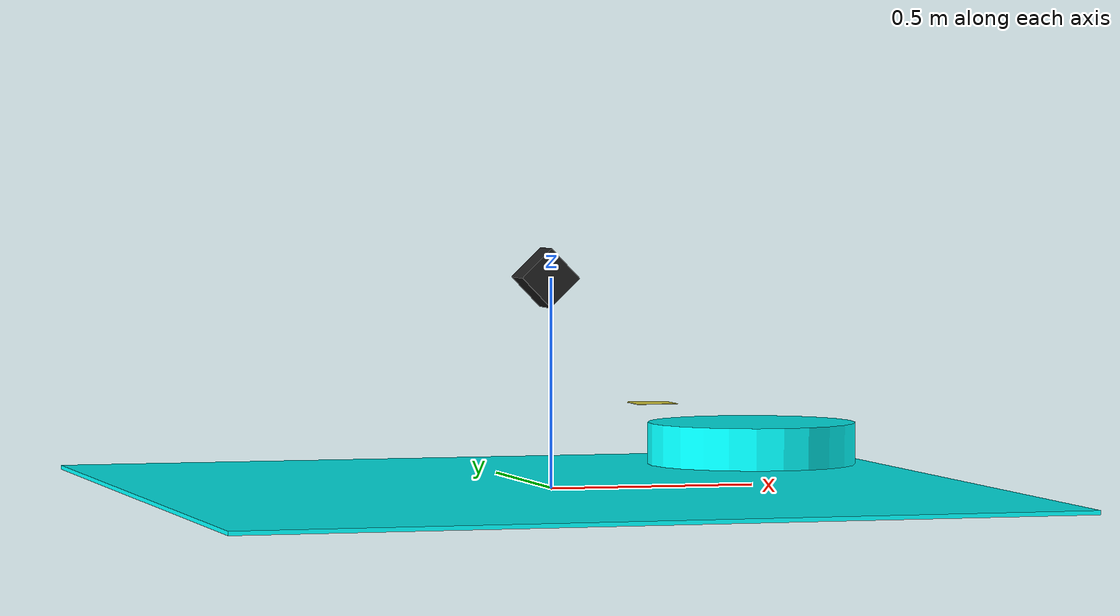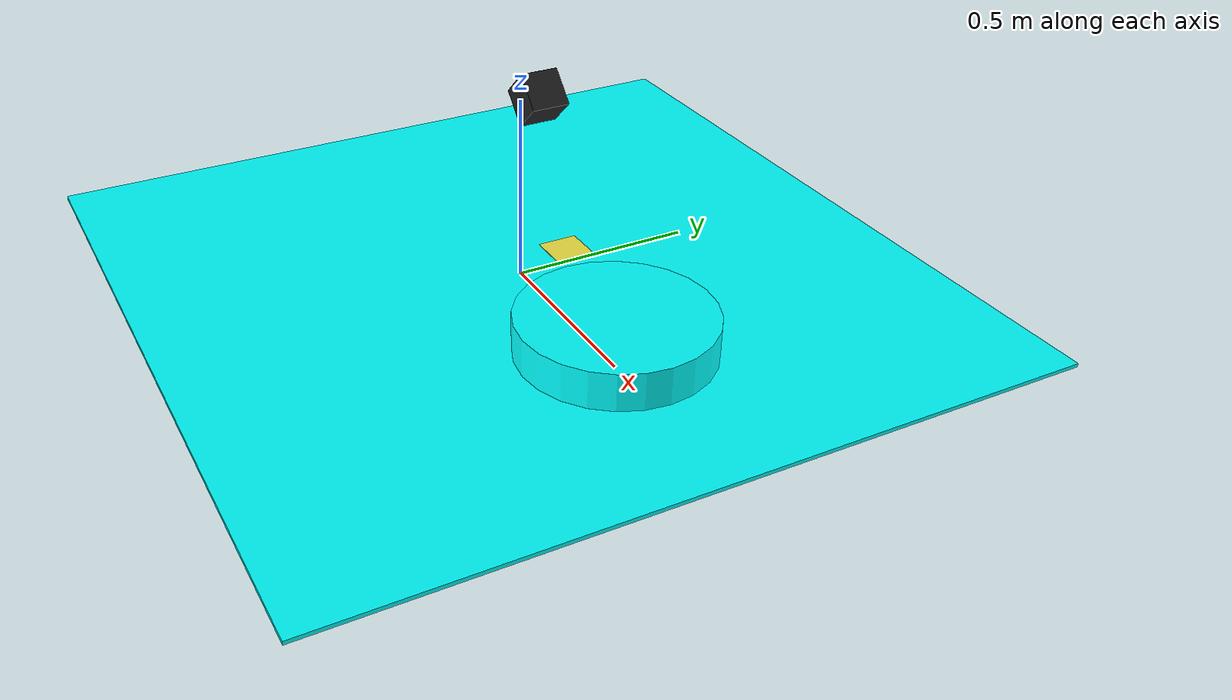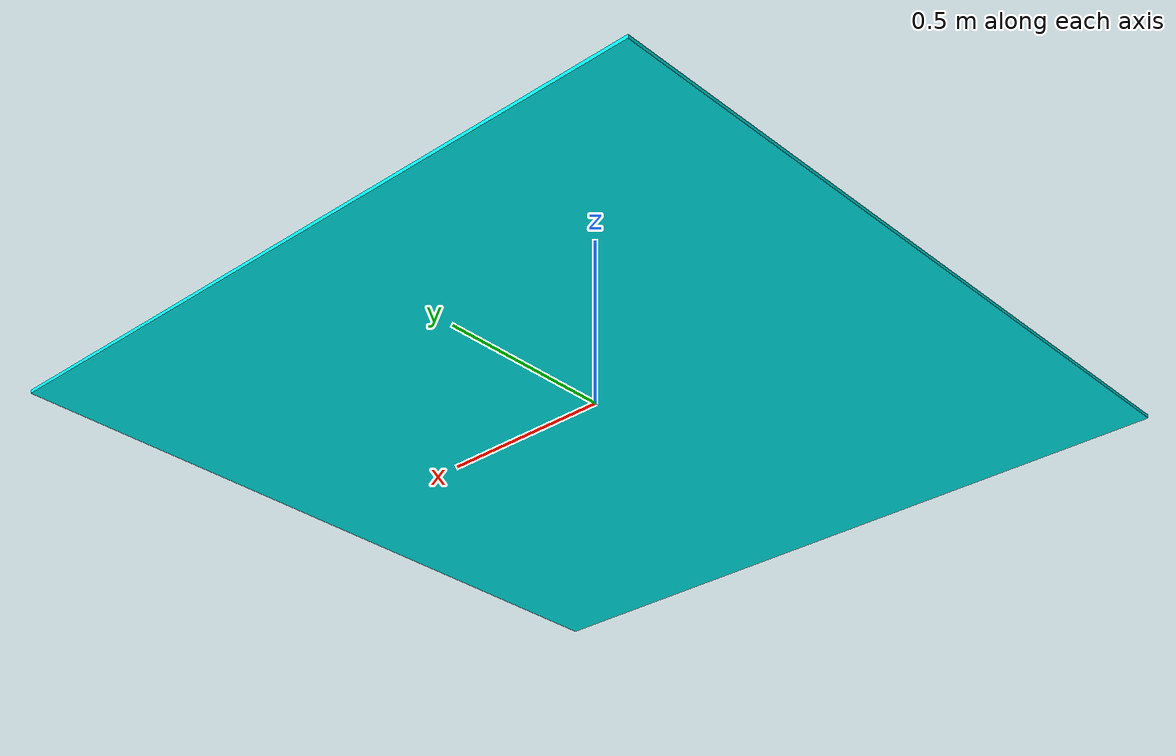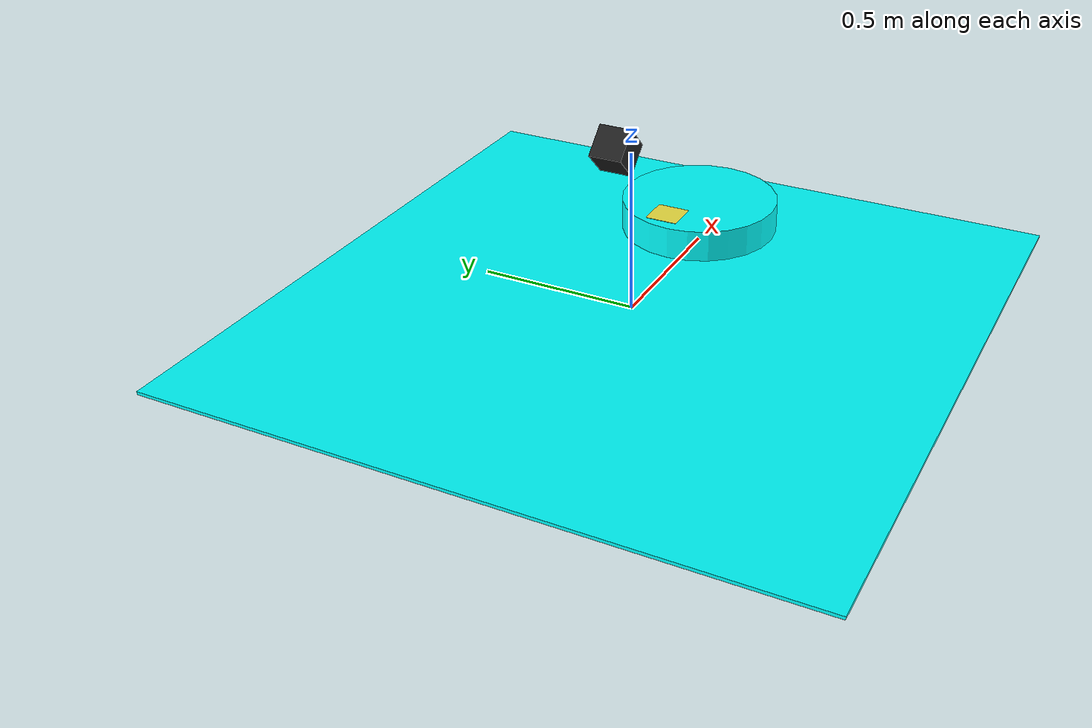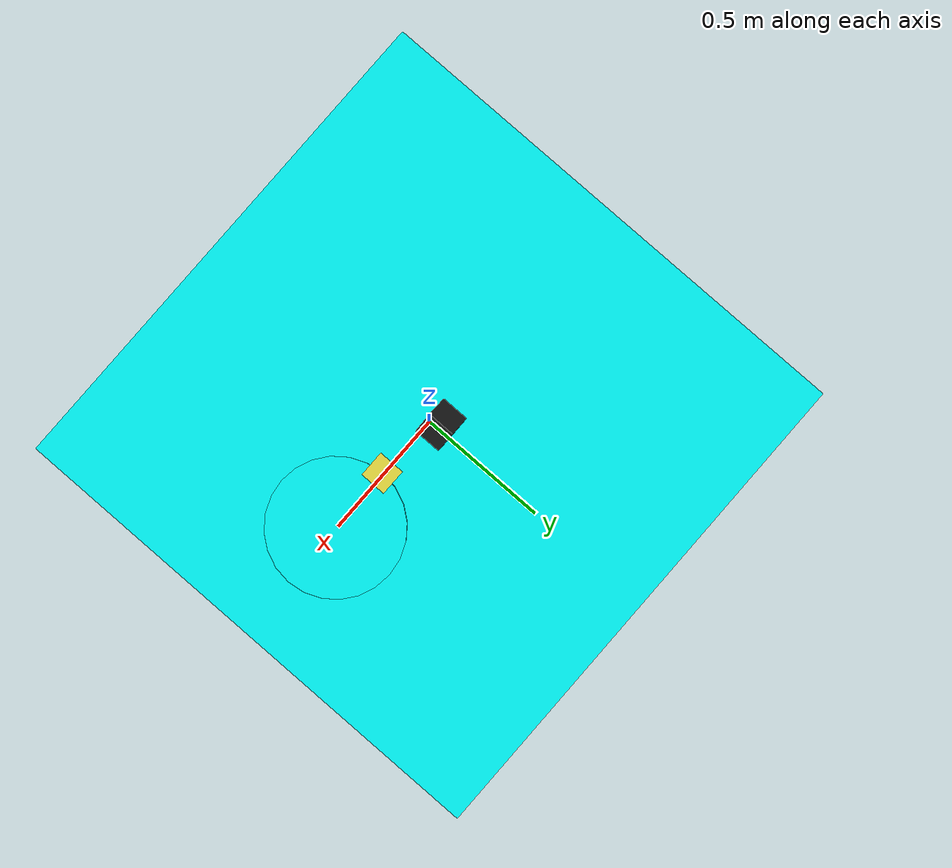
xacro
<?xml version="1.0" ?>
<robot name="demo_robot_name" xmlns:xacro="http://www.ros.org/wiki/xacro">

  <link name="world"/>

  <joint name="world_to_base" type="fixed">
    <parent link="world"/>
    <child link="base_link"/>
  </joint>

    <link name="base_link">
        <inertial>
            <origin xyz="0 0 0" rpy="0 0 0"/>
            <mass value="1"/>
            <inertia ixx="100"  ixy="0"  ixz="0" iyy="100" iyz="0" izz="100" />
        </inertial>
        <visual>
            <origin xyz="0 0 0" rpy="0 0 0" />
            <geometry>
                <box size="2 2 0.01" />
            </geometry>
            <material name="Cyan">
                <color rgba="0 1.0 1.0 1.0"/>
            </material>
        </visual>
    </link>

    <joint name="base_to_carousel" type="revolute">
        <parent link="base_link"/>
        <child link="carousel"/>
        <origin xyz="0.5 0 0.1" rpy="0 0 0"/>
        <limit effort="30" velocity="1.0" lower="-3.14" upper="0.314" />
        <axis xyz="0 0 1"/>
    </joint>

    <link name="carousel">
        <inertial>
            <origin xyz="0 0 0" rpy="0 0 0"/>
            <mass value="1"/>
            <inertia ixx="100"  ixy="0"  ixz="0" iyy="100" iyz="0" izz="100" />
        </inertial>
        <visual>
            <origin xyz="0 0 0" rpy="0 0 0" />
            <geometry>
                <cylinder length="0.1" radius="0.25" />
            </geometry>
            <material name="Cyan">
                <color rgba="0 1.0 1.0 1.0"/>
            </material>
        </visual>
    </link>

    <xacro:include filename="$(find aruco_model_generation)/urdf/common/base_aruco_panel.urdf.xacro"/>
    <xacro:aruco_panel width="0.1" thickness="0.001" id="0"/>

    <joint name="carousel_to_aruco" type="fixed">
        <parent link="carousel"/>
        <child link="aruco_0_panel"/>
        <origin xyz="-0.25 0 0.1" rpy="0 0 0"/>
    </joint>

    <joint name="camera_joint" type="fixed">
        <axis xyz="0 1 0" />
        <origin xyz="0 0.05 0.5" rpy="0 0.8 0"/>
        <parent link="base_link"/>
        <child link="camera_link"/>
    </joint>

    <!-- Camera -->
    <link name="camera_link">
        <collision>
        <origin xyz="0 0 0" rpy="0 0 0"/>
        <geometry>
        <box size="0.1 0.1 0.1"/>
        </geometry>
        </collision>

        <visual>
        <origin xyz="0 0 0" rpy="0 0 0"/>
        <geometry>
        <box size="0.1 0.1 0.1"/>
        </geometry>
        <material name="black"/>
        </visual>

        <inertial>
        <mass value="1e-5" />
        <origin xyz="0 0 0" rpy="0 0 0"/>
        <inertia ixx="1e-6" ixy="0" ixz="0" iyy="1e-6" iyz="0" izz="1e-6" />
        </inertial>
    </link>

      <gazebo reference="camera_link">
    <sensor type="camera" name="camera">
      <update_rate>30.0</update_rate>
      <camera name="head">
        <horizontal_fov>1.3962634</horizontal_fov>
        <image>
          <width>800</width>
          <height>800</height>
          <format>R8G8B8</format>
        </image>
        <clip>
          <near>0.02</near>
          <far>300</far>
        </clip>
        <noise>
          <type>gaussian</type>
          <!-- Noise is sampled independently per pixel on each frame.
               That pixel's noise value is added to each of its color
               channels, which at that point lie in the range [0,1]. -->
          <mean>0.0</mean>
          <stddev>0.007</stddev>
        </noise>
      </camera>
      <plugin name="camera_controller" filename="libgazebo_ros_camera.so">
        <alwaysOn>true</alwaysOn>
        <updateRate>0.0</updateRate>
        <cameraName>demo_robot/camera</cameraName>
        <imageTopicName>image_raw</imageTopicName>
        <cameraInfoTopicName>camera_info</cameraInfoTopicName>
        <frameName>camera_link</frameName>
        <hackBaseline>0.07</hackBaseline>
        <distortionK1>0.0</distortionK1>
        <distortionK2>0.0</distortionK2>
        <distortionK3>0.0</distortionK3>
        <distortionT1>0.0</distortionT1>
        <distortionT2>0.0</distortionT2>
      </plugin>
    </sensor>
  </gazebo>

</robot>

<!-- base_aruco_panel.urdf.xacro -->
<robot xmlns:xacro="http://www.ros.org/wiki/xacro">

<xacro:macro name="panel_origin" params="width thickness">
    <origin xyz="0 0 0" rpy="0 0 0"/>
</xacro:macro>

<xacro:macro name="panel_geometry" params="width thickness">
      <geometry>
        <box size="${width} ${width} ${thickness}"/>
      </geometry>
</xacro:macro>

<xacro:macro name="panel_box" params="width thickness">
    <xacro:panel_origin width="${width}" thickness="${thickness}"/>
    <xacro:panel_geometry width="${width}" thickness="${thickness}"/>
</xacro:macro>

<xacro:macro name="aruco_panel" params="width thickness id">
    <material name="Aruco${id}">
        <texture filename="package://aruco_model_generation/media/materials/texture/aruco_${id}.png"/>
        <script>
            <uri>package://aruco_model_generation/media/materials/scripts/script_${id}.material</uri>
            <name>Aruco/Aruco${id}</name>
        </script>
    </material>
    <link name="aruco_${id}_panel">
        <collision>
            <xacro:panel_box width="${width}" thickness="${thickness}"/>
        </collision>

        <visual>
            <xacro:panel_box width="${width}" thickness="${thickness}"/>
            <material name="Aruco${id}"/>
        </visual>

        <inertial>
            <xacro:panel_origin width="${width}" thickness="${thickness}"/>
        <mass value="1"/>
        <inertia
            ixx="0" ixy="0.0" ixz="0.0"
            iyy="0" iyz="0.0"
            izz="0"/>
        </inertial>
    </link>
    <gazebo reference="aruco_${id}_panel">
        <material>Aruco/Aruco${id}</material>
    </gazebo>
</xacro:macro>

</robot>
